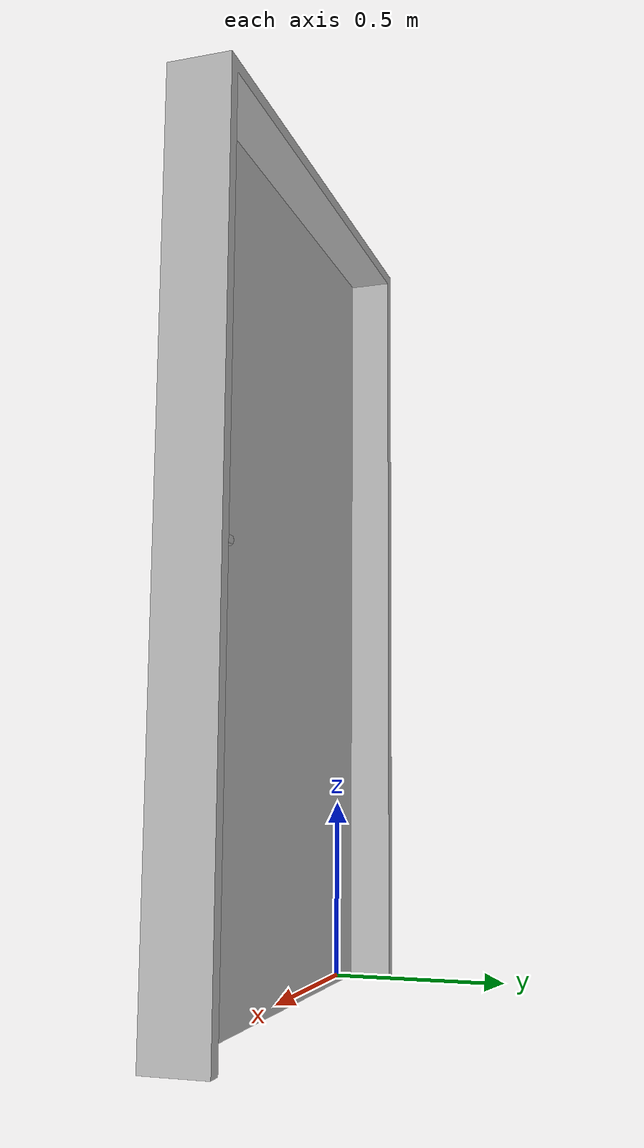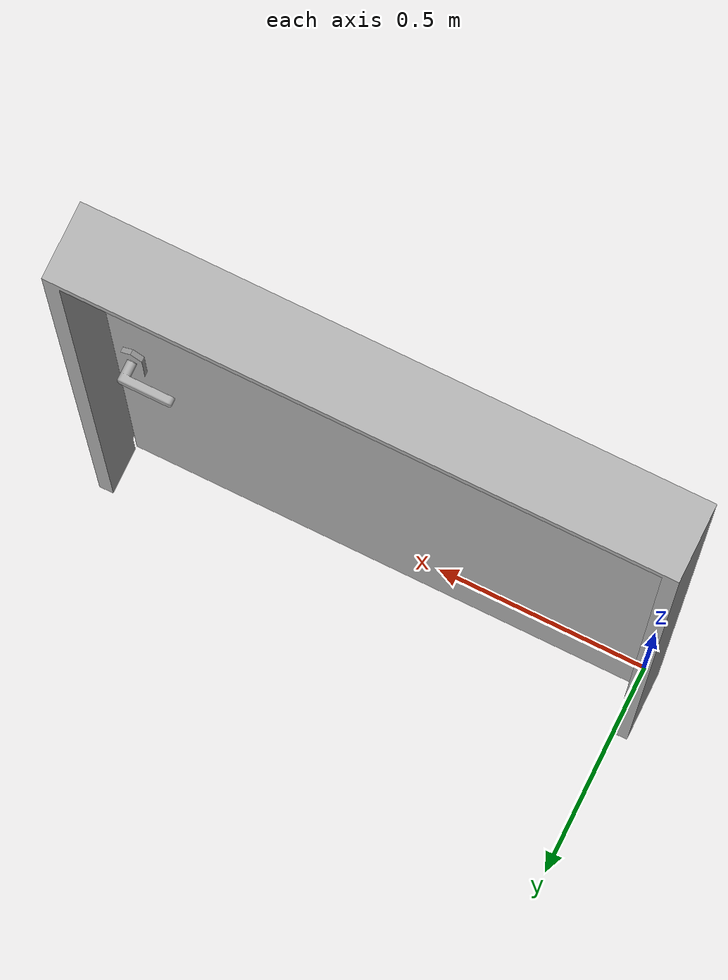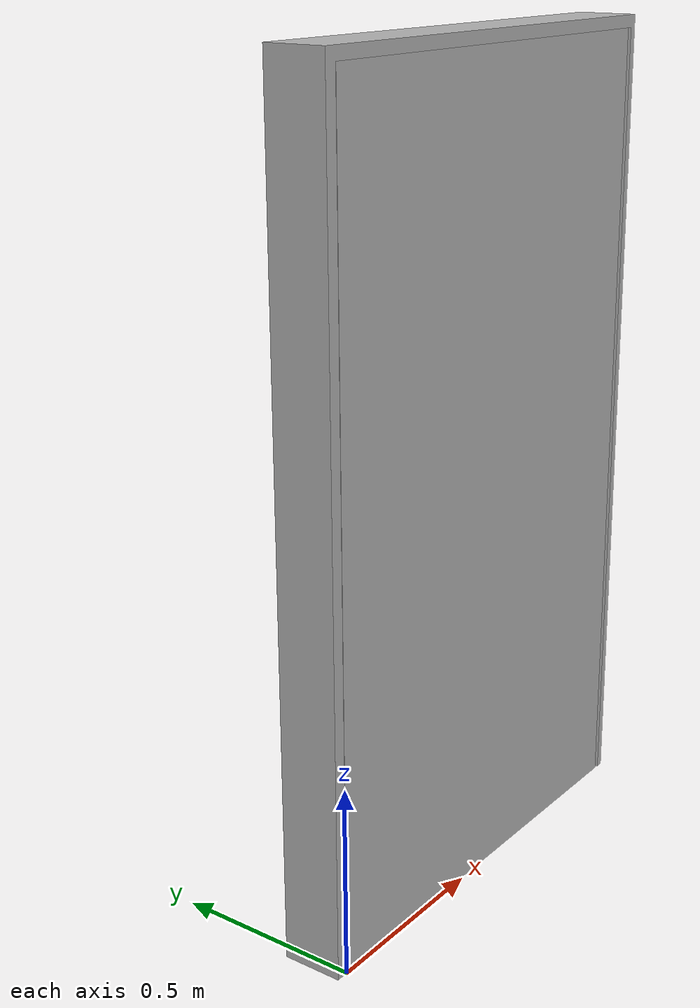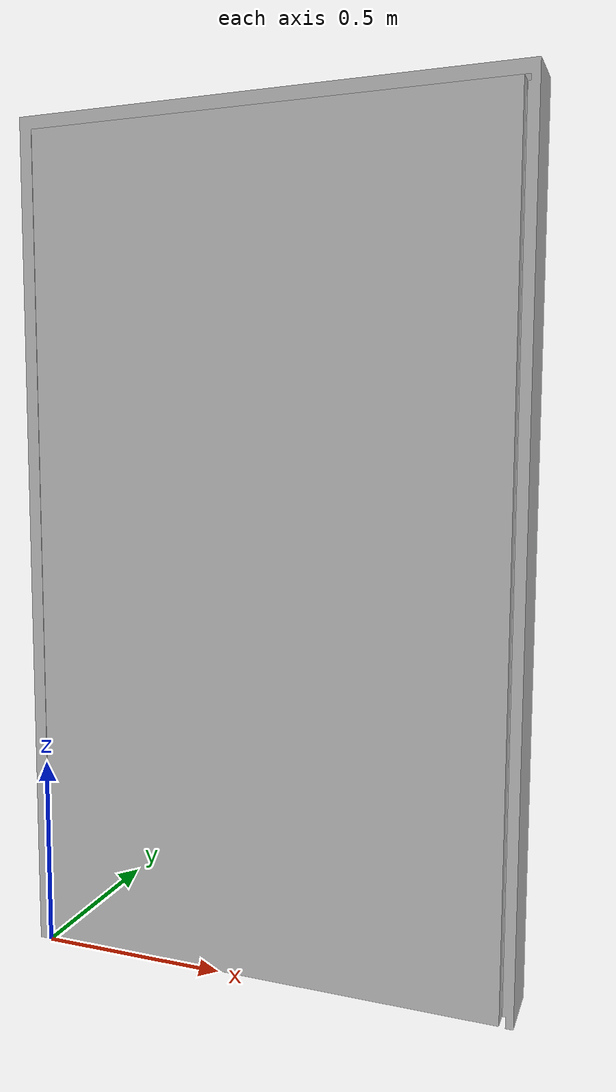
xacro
<?xml version="1.0" ?>
<robot name="Door" xmlns:xacro="http://www.ros.org/wiki/xacro">

<xacro:include filename="materials.xacro" />
<link name="base_link">
  <inertial>
    <origin xyz="0.5819937463998599 0.08316123619424477 1.32746546620251" rpy="0 0 0"/>
    <mass value="219.40985500000056"/>
    <inertia ixx="111.289107" iyy="183.94816" izz="73.563072" ixy="-0.447727" iyz="0.177886" ixz="-1.575941"/>
  </inertial>
  <visual>
    <origin xyz="0 0 0" rpy="0 0 0"/>
    <geometry>
      <mesh filename="../meshes/base_link.stl" scale="0.001 0.001 0.001"/>
    </geometry>
    <material name="silver"/>
  </visual>
  <collision>
    <origin xyz="0 0 0" rpy="0 0 0"/>
    <geometry>
      <mesh filename="../meshes/base_link.stl" scale="0.001 0.001 0.001"/>
    </geometry>
  </collision>
</link>

<link name="door_1">
  <inertial>
    <origin xyz="0.6114943756434033 0.021524038169472005 -1.0699955233309146" rpy="0 0 0"/>
    <mass value="882.0500765437021"/>
    <inertia ixx="336.462532" iyy="445.879122" izz="109.689348" ixy="-0.011927" iyz="-0.000108" ixz="-0.002221"/>
  </inertial>
  <visual>
    <origin xyz="0.001 -0.0 -2.142" rpy="0 0 0"/>
    <geometry>
      <mesh filename="../meshes/door_1.stl" scale="0.001 0.001 0.001"/>
    </geometry>
    <material name="silver"/>
  </visual>
  <collision>
    <origin xyz="0.001 -0.0 -2.142" rpy="0 0 0"/>
    <geometry>
      <mesh filename="../meshes/door_1.stl" scale="0.001 0.001 0.001"/>
    </geometry>
  </collision>
</link>

<link name="handle_1">
  <inertial>
    <origin xyz="-0.04174341394066472 0.03455244493582224 -3.4501106416229277e-09" rpy="0 0 0"/>
    <mass value="0.5043887416723644"/>
    <inertia ixx="8.2e-05" iyy="0.000698" izz="0.00074" ixy="8.9e-05" iyz="-0.0" ixz="0.0"/>
  </inertial>
  <visual>
    <origin xyz="-1.173 -0.0557 -1.102" rpy="0 0 0"/>
    <geometry>
      <mesh filename="../meshes/handle_1.stl" scale="0.001 0.001 0.001"/>
    </geometry>
    <material name="silver"/>
  </visual>
  <collision>
    <origin xyz="-1.173 -0.0557 -1.102" rpy="0 0 0"/>
    <geometry>
      <mesh filename="../meshes/handle_1.stl" scale="0.001 0.001 0.001"/>
    </geometry>
  </collision>
</link>

<joint name="door_joint" type="revolute">
  <origin xyz="-0.001 0.0 2.142" rpy="0 0 0"/>
  <parent link="base_link"/>
  <child link="door_1"/>
  <axis xyz="0.0 0.0 -1.0"/>
  <limit upper="1.570796" lower="0.0" effort="100" velocity="100"/>
</joint>

<joint name="handle_joint" type="revolute">
  <origin xyz="1.174 0.0557 -1.04" rpy="0 0 0"/>
  <parent link="door_1"/>
  <child link="handle_1"/>
  <axis xyz="-0.0 1.0 -0.0"/>
  <limit upper="0.0" lower="-1.570796" effort="100" velocity="100"/>
</joint>

</robot>

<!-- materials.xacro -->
<robot name="Door" xmlns:xacro="http://www.ros.org/wiki/xacro" >

<material name="silver">
  <color rgba="0.700 0.700 0.700 1.000"/>
</material>

</robot>
